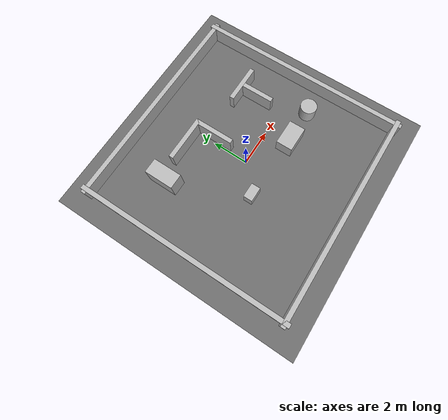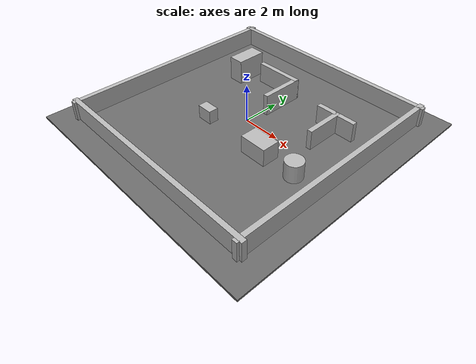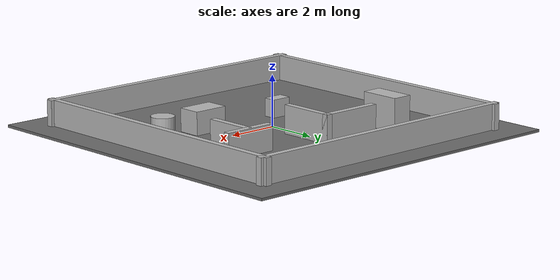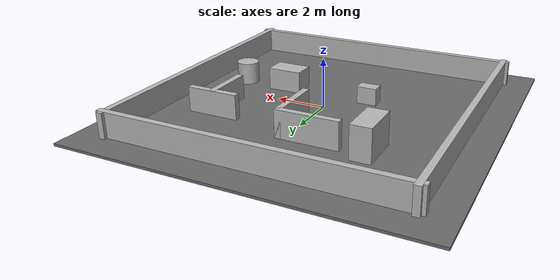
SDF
<?xml version="1.0"?>
<sdf version="1.10">
  <world name="resilient_lab">
    <plugin filename="gz-sim-physics-system" name="gz::sim::systems::Physics"/>
    <plugin filename="gz-sim-user-commands-system" name="gz::sim::systems::UserCommands"/>
    <plugin filename="gz-sim-scene-broadcaster-system" name="gz::sim::systems::SceneBroadcaster"/>
    <plugin filename="gz-sim-sensors-system" name="gz::sim::systems::Sensors">
      <render_engine>ogre2</render_engine>
    </plugin>
    <plugin filename="gz-sim-imu-system" name="gz::sim::systems::Imu"/>

    <physics name="default_physics" type="ode">
      <max_step_size>0.001</max_step_size>
      <real_time_factor>1.0</real_time_factor>
    </physics>

    <light name="sun" type="directional">
      <cast_shadows>true</cast_shadows>
      <pose>0 0 10 0 0 0</pose>
      <diffuse>0.8 0.8 0.8 1</diffuse>
      <specular>0.2 0.2 0.2 1</specular>
      <direction>-0.5 0.1 -0.9</direction>
    </light>

    <model name="ground_plane">
      <static>true</static>
      <link name="ground_link">
        <pose>0 0 -0.05 0 0 0</pose>
        <collision name="ground_collision">
          <geometry><box><size>14 14 0.1</size></box></geometry>
          <surface><friction><ode><mu>1.0</mu><mu2>1.0</mu2></ode></friction></surface>
        </collision>
        <visual name="ground_visual">
          <geometry><box><size>14 14 0.1</size></box></geometry>
          <material><ambient>0.30 0.30 0.30 1</ambient><diffuse>0.42 0.42 0.42 1</diffuse></material>
        </visual>
      </link>
    </model>

    <!-- A 12 m room keeps every route wall inside the 12 m LiDAR range. -->
    <model name="wall_north"><static>true</static><pose>0 5.75 0.5 0 0 0</pose><link name="link"><collision name="collision"><geometry><box><size>12 0.25 1</size></box></geometry></collision><visual name="visual"><geometry><box><size>12 0.25 1</size></box></geometry></visual></link></model>
    <model name="wall_south"><static>true</static><pose>0 -5.75 0.5 0 0 0</pose><link name="link"><collision name="collision"><geometry><box><size>12 0.25 1</size></box></geometry></collision><visual name="visual"><geometry><box><size>12 0.25 1</size></box></geometry></visual></link></model>
    <model name="wall_west"><static>true</static><pose>-5.75 0 0.5 0 0 0</pose><link name="link"><collision name="collision"><geometry><box><size>0.25 12 1</size></box></geometry></collision><visual name="visual"><geometry><box><size>0.25 12 1</size></box></geometry></visual></link></model>
    <model name="wall_east"><static>true</static><pose>5.75 0 0.5 0 0 0</pose><link name="link"><collision name="collision"><geometry><box><size>0.25 12 1</size></box></geometry></collision><visual name="visual"><geometry><box><size>0.25 12 1</size></box></geometry></visual></link></model>

    <!-- Asymmetric L and T structures provide distinct corners for scan matching. -->
    <model name="l_horizontal"><static>true</static><pose>-0.9 3.15 0.55 0 0 0</pose><link name="link"><collision name="collision"><geometry><box><size>2.5 0.25 1.1</size></box></geometry></collision><visual name="visual"><geometry><box><size>2.5 0.25 1.1</size></box></geometry></visual></link></model>
    <model name="l_vertical"><static>true</static><pose>0.225 2.15 0.55 0 0 0</pose><link name="link"><collision name="collision"><geometry><box><size>0.25 2.25 1.1</size></box></geometry></collision><visual name="visual"><geometry><box><size>0.25 2.25 1.1</size></box></geometry></visual></link></model>
    <model name="t_horizontal"><static>true</static><pose>3.45 2.45 0.5 0 0 0</pose><link name="link"><collision name="collision"><geometry><box><size>2.1 0.25 1</size></box></geometry></collision><visual name="visual"><geometry><box><size>2.1 0.25 1</size></box></geometry></visual></link></model>
    <model name="t_vertical"><static>true</static><pose>3.45 1.55 0.5 0 0 0</pose><link name="link"><collision name="collision"><geometry><box><size>0.25 2.0 1</size></box></geometry></collision><visual name="visual"><geometry><box><size>0.25 2.0 1</size></box></geometry></visual></link></model>

    <!-- Non-route-side obstacles make occlusion and free-space evidence asymmetric. -->
    <model name="central_rectangular_obstacle"><static>true</static><pose>2.25 -1.35 0.45 0 0 0</pose><link name="link"><collision name="collision"><geometry><box><size>1.4 0.9 0.9</size></box></geometry></collision><visual name="visual"><geometry><box><size>1.4 0.9 0.9</size></box></geometry></visual></link></model>
    <model name="northwest_occluder"><static>true</static><pose>-3.1 2.9 0.65 0 0 0</pose><link name="link"><collision name="collision"><geometry><box><size>0.8 1.6 1.3</size></box></geometry></collision><visual name="visual"><geometry><box><size>0.8 1.6 1.3</size></box></geometry></visual></link></model>
    <model name="east_cylinder"><static>true</static><pose>4.25 -1.3 0.45 0 0 0</pose><link name="link"><collision name="collision"><geometry><cylinder><radius>0.45</radius><length>0.9</length></cylinder></geometry></collision><visual name="visual"><geometry><cylinder><radius>0.45</radius><length>0.9</length></cylinder></geometry></visual></link></model>
    <model name="small_asymmetric_block"><static>true</static><pose>-1.4 -1.25 0.35 0 0 0</pose><link name="link"><collision name="collision"><geometry><box><size>0.8 0.5 0.7</size></box></geometry></collision><visual name="visual"><geometry><box><size>0.8 0.5 0.7</size></box></geometry></visual></link></model>
  </world>
</sdf>
